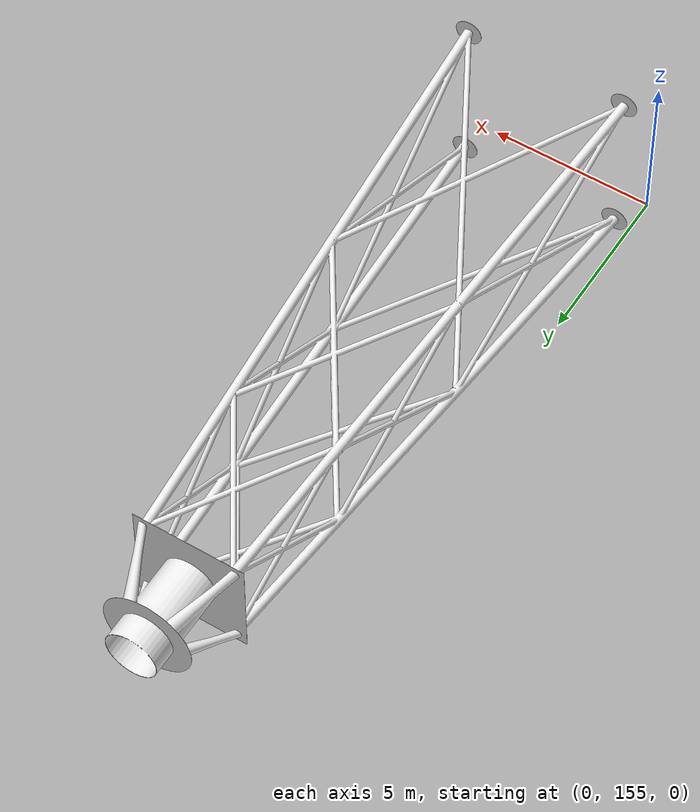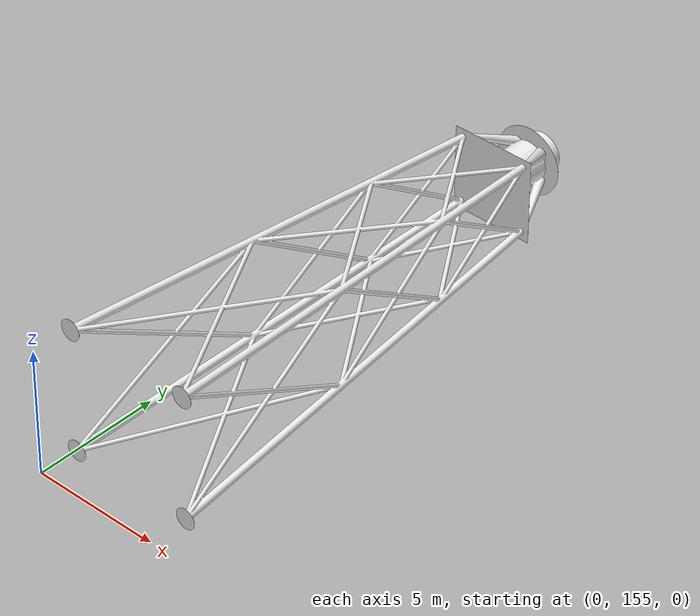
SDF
<?xml version="1.0" ?>
<sdf version="1.5">
  <model name="tower">
    <static>true</static>
    <link name="link">
      <collision name="collision">
        <geometry>
          <box>
           <size>1.2 1.2 4.2</size>
            <scale>0.001 0.001 0.001</scale>
          </box>
        </geometry>
        <surface>
          <friction>
            <ode>
              <mu>100</mu>
              <mu2>50</mu2>
            </ode>
          </friction>
        </surface>
      </collision>
      <visual name="visual">
        <geometry>
          <mesh>
            <uri>model://tower/meshes/Tower.STL</uri>
            <scale>0.005 0.005 0.005</scale>
          </mesh>
        </geometry>
        <material>
          <script>
            <uri>file://media/materials/scripts/gazebo.material</uri>
            <name>Gazebo/White</name>
          </script>
        </material>
      </visual>
    </link>
  </model>
</sdf>
